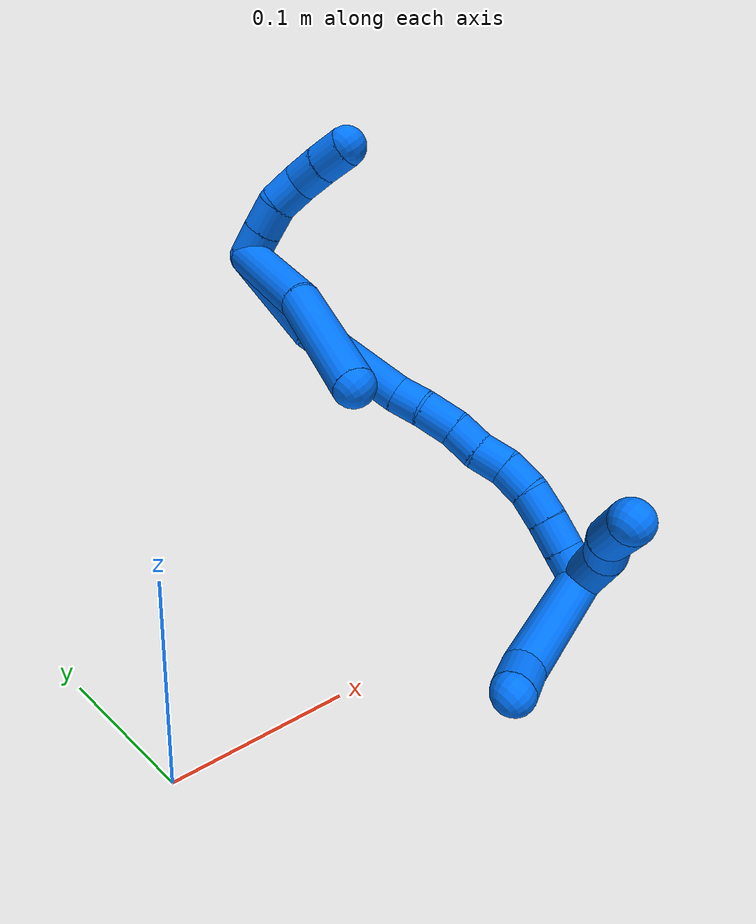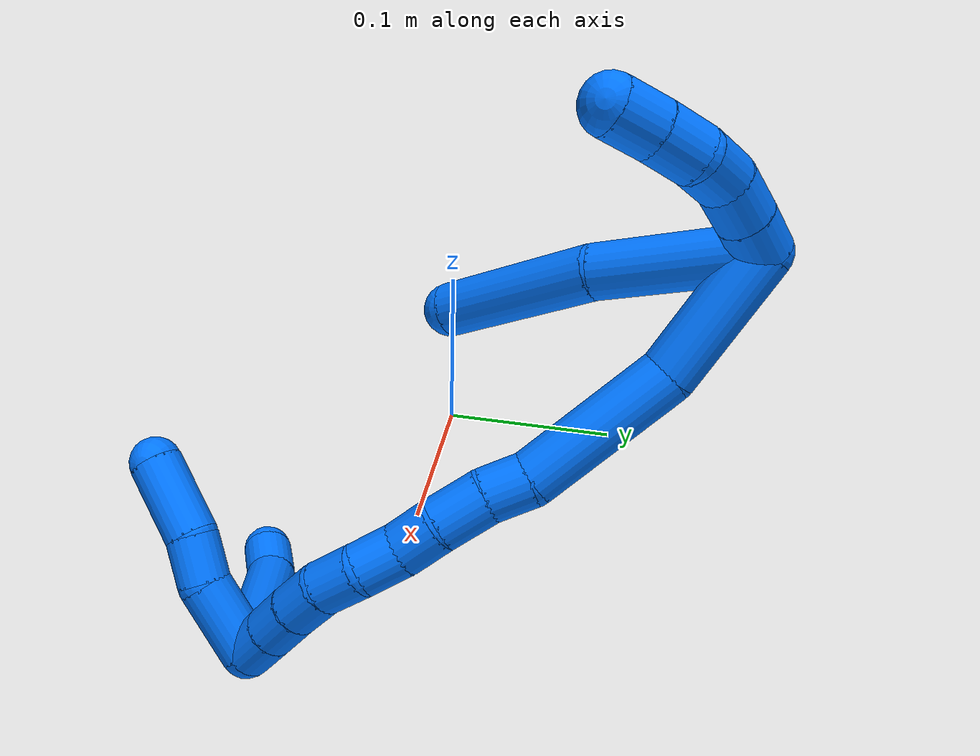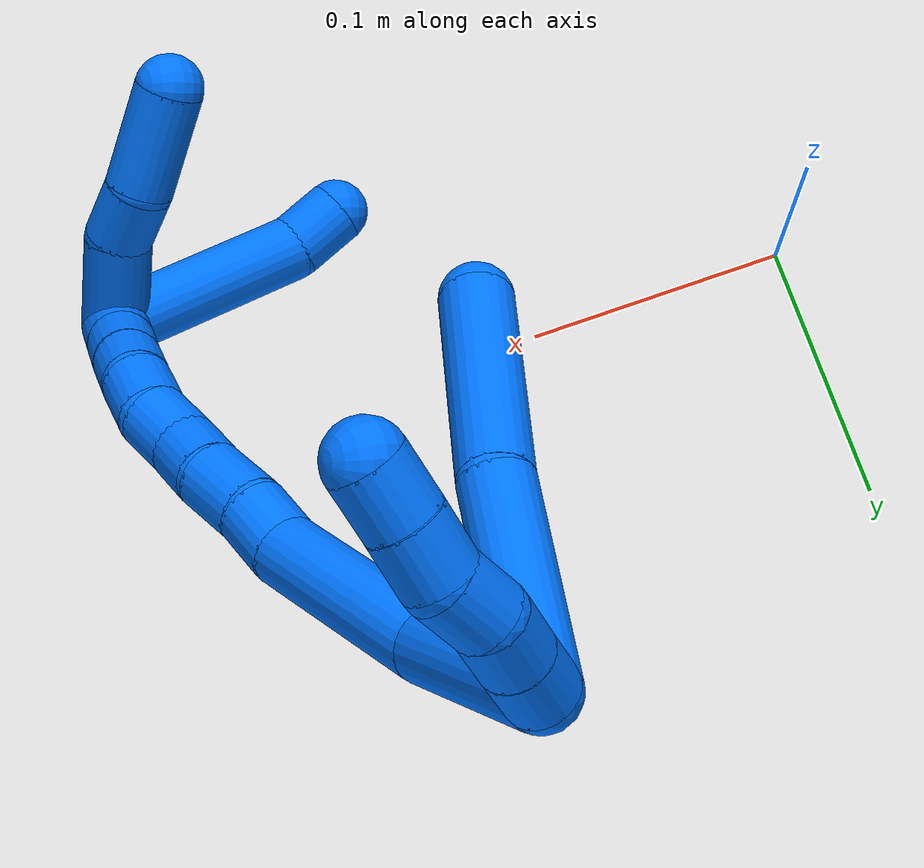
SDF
<sdf version="1.7">
 <world name="default">
  <model name="14">
   <static>0</static>
   <link name="14">
    <collision name="collision-cylinder-e_1_2_8">
     <pose>0.018135 -0.030482 -0.006465 1.77979 0.527081 0.642982</pose>
     <geometry><cylinder><radius>0.0125</radius><length>0.072106</length></cylinder></geometry>
     <surface>
      <friction><ode><mu>1.16</mu><mu2>1.16</mu2><slip1>0</slip1><slip2>0</slip2></ode></friction>
      <contact><ode><kp>1e+06</kp><kd>1</kd><max_vel>0</max_vel><min_depth>0.001</min_depth></ode></contact>
     </surface>
    </collision>
    <visual name="visual-cylinder-e_1_2_8">
     <pose>0.018135 -0.030482 -0.006465 1.77979 0.527081 0.642982</pose>
     <geometry><cylinder><radius>0.0125</radius><length>0.072106</length></cylinder></geometry>
     <material><ambient>0 0.462745 1 1</ambient></material>
    </visual>
    <collision name="collision-cylinder-e_2_8_6">
     <pose>0.058655 -0.090035 -0.025995 1.99316 0.612284 0.908942</pose>
     <geometry><cylinder><radius>0.0125</radius><length>0.077894</length></cylinder></geometry>
     <surface>
      <friction><ode><mu>1.16</mu><mu2>1.16</mu2><slip1>0</slip1><slip2>0</slip2></ode></friction>
      <contact><ode><kp>1e+06</kp><kd>1</kd><max_vel>0</max_vel><min_depth>0.001</min_depth></ode></contact>
     </surface>
    </collision>
    <visual name="visual-cylinder-e_2_8_6">
     <pose>0.058655 -0.090035 -0.025995 1.99316 0.612284 0.908942</pose>
     <geometry><cylinder><radius>0.0125</radius><length>0.077894</length></cylinder></geometry>
     <material><ambient>0 0.462745 1 1</ambient></material>
    </visual>
    <collision name="collision-cylinder-e_1_2_9">
     <pose>-0.004316 -0.005817 0.006895 0.700759 -0.446234 -0.165462</pose>
     <geometry><cylinder><radius>0.0125</radius><length>0.02</length></cylinder></geometry>
     <surface>
      <friction><ode><mu>1.16</mu><mu2>1.16</mu2><slip1>0</slip1><slip2>0</slip2></ode></friction>
      <contact><ode><kp>1e+06</kp><kd>1</kd><max_vel>0</max_vel><min_depth>0.001</min_depth></ode></contact>
     </surface>
    </collision>
    <visual name="visual-cylinder-e_1_2_9">
     <pose>-0.004316 -0.005817 0.006895 0.700759 -0.446234 -0.165462</pose>
     <geometry><cylinder><radius>0.0125</radius><length>0.02</length></cylinder></geometry>
     <material><ambient>0 0.462745 1 1</ambient></material>
    </visual>
    <collision name="collision-cylinder-e_2_9_10">
     <pose>-0.012761 -0.017705 0.020578 0.729803 -0.425692 -0.164745</pose>
     <geometry><cylinder><radius>0.0125</radius><length>0.02</length></cylinder></geometry>
     <surface>
      <friction><ode><mu>1.16</mu><mu2>1.16</mu2><slip1>0</slip1><slip2>0</slip2></ode></friction>
      <contact><ode><kp>1e+06</kp><kd>1</kd><max_vel>0</max_vel><min_depth>0.001</min_depth></ode></contact>
     </surface>
    </collision>
    <visual name="visual-cylinder-e_2_9_10">
     <pose>-0.012761 -0.017705 0.020578 0.729803 -0.425692 -0.164745</pose>
     <geometry><cylinder><radius>0.0125</radius><length>0.02</length></cylinder></geometry>
     <material><ambient>0 0.462745 1 1</ambient></material>
    </visual>
    <collision name="collision-cylinder-e_3_10_11">
     <pose>-0.018123 -0.029633 0.035378 0.631142 -0.123558 -0.040385</pose>
     <geometry><cylinder><radius>0.0125</radius><length>0.02</length></cylinder></geometry>
     <surface>
      <friction><ode><mu>1.16</mu><mu2>1.16</mu2><slip1>0</slip1><slip2>0</slip2></ode></friction>
      <contact><ode><kp>1e+06</kp><kd>1</kd><max_vel>0</max_vel><min_depth>0.001</min_depth></ode></contact>
     </surface>
    </collision>
    <visual name="visual-cylinder-e_3_10_11">
     <pose>-0.018123 -0.029633 0.035378 0.631142 -0.123558 -0.040385</pose>
     <geometry><cylinder><radius>0.0125</radius><length>0.02</length></cylinder></geometry>
     <material><ambient>0 0.462745 1 1</ambient></material>
    </visual>
    <collision name="collision-cylinder-e_4_11_12">
     <pose>-0.019989 -0.043726 0.049025 0.970785 -0.063395 -0.033448</pose>
     <geometry><cylinder><radius>0.0125</radius><length>0.02</length></cylinder></geometry>
     <surface>
      <friction><ode><mu>1.16</mu><mu2>1.16</mu2><slip1>0</slip1><slip2>0</slip2></ode></friction>
      <contact><ode><kp>1e+06</kp><kd>1</kd><max_vel>0</max_vel><min_depth>0.001</min_depth></ode></contact>
     </surface>
    </collision>
    <visual name="visual-cylinder-e_4_11_12">
     <pose>-0.019989 -0.043726 0.049025 0.970785 -0.063395 -0.033448</pose>
     <geometry><cylinder><radius>0.0125</radius><length>0.02</length></cylinder></geometry>
     <material><ambient>0 0.462745 1 1</ambient></material>
    </visual>
    <collision name="collision-cylinder-e_5_12_5">
     <pose>-0.020785 -0.060227 0.060287 0.97307 -0.016259 -0.0086</pose>
     <geometry><cylinder><radius>0.0125</radius><length>0.02</length></cylinder></geometry>
     <surface>
      <friction><ode><mu>1.16</mu><mu2>1.16</mu2><slip1>0</slip1><slip2>0</slip2></ode></friction>
      <contact><ode><kp>1e+06</kp><kd>1</kd><max_vel>0</max_vel><min_depth>0.001</min_depth></ode></contact>
     </surface>
    </collision>
    <visual name="visual-cylinder-e_5_12_5">
     <pose>-0.020785 -0.060227 0.060287 0.97307 -0.016259 -0.0086</pose>
     <geometry><cylinder><radius>0.0125</radius><length>0.02</length></cylinder></geometry>
     <material><ambient>0 0.462745 1 1</ambient></material>
    </visual>
    <collision name="collision-cylinder-e_1_2_13">
     <pose>0.030635 -0.005958 -8.1e-05 1.58441 1.37869 1.39207</pose>
     <geometry><cylinder><radius>0.0125</radius><length>0.062417</length></cylinder></geometry>
     <surface>
      <friction><ode><mu>1.16</mu><mu2>1.16</mu2><slip1>0</slip1><slip2>0</slip2></ode></friction>
      <contact><ode><kp>1e+06</kp><kd>1</kd><max_vel>0</max_vel><min_depth>0.001</min_depth></ode></contact>
     </surface>
    </collision>
    <visual name="visual-cylinder-e_1_2_13">
     <pose>0.030635 -0.005958 -8.1e-05 1.58441 1.37869 1.39207</pose>
     <geometry><cylinder><radius>0.0125</radius><length>0.062417</length></cylinder></geometry>
     <material><ambient>0 0.462745 1 1</ambient></material>
    </visual>
    <collision name="collision-cylinder-e_2_13_14">
     <pose>0.093126 -0.027101 0.006051 1.18243 1.0952 0.777123</pose>
     <geometry><cylinder><radius>0.0125</radius><length>0.071667</length></cylinder></geometry>
     <surface>
      <friction><ode><mu>1.16</mu><mu2>1.16</mu2><slip1>0</slip1><slip2>0</slip2></ode></friction>
      <contact><ode><kp>1e+06</kp><kd>1</kd><max_vel>0</max_vel><min_depth>0.001</min_depth></ode></contact>
     </surface>
    </collision>
    <visual name="visual-cylinder-e_2_13_14">
     <pose>0.093126 -0.027101 0.006051 1.18243 1.0952 0.777123</pose>
     <geometry><cylinder><radius>0.0125</radius><length>0.071667</length></cylinder></geometry>
     <material><ambient>0 0.462745 1 1</ambient></material>
    </visual>
    <collision name="collision-cylinder-e_3_14_15">
     <pose>0.132309 -0.048908 0.014052 1.30701 0.818361 0.64123</pose>
     <geometry><cylinder><radius>0.0125</radius><length>0.020074</length></cylinder></geometry>
     <surface>
      <friction><ode><mu>1.16</mu><mu2>1.16</mu2><slip1>0</slip1><slip2>0</slip2></ode></friction>
      <contact><ode><kp>1e+06</kp><kd>1</kd><max_vel>0</max_vel><min_depth>0.001</min_depth></ode></contact>
     </surface>
    </collision>
    <visual name="visual-cylinder-e_3_14_15">
     <pose>0.132309 -0.048908 0.014052 1.30701 0.818361 0.64123</pose>
     <geometry><cylinder><radius>0.0125</radius><length>0.020074</length></cylinder></geometry>
     <material><ambient>0 0.462745 1 1</ambient></material>
    </visual>
    <collision name="collision-cylinder-e_4_15_16">
     <pose>0.149691 -0.061809 0.018012 1.23783 0.986905 0.731679</pose>
     <geometry><cylinder><radius>0.0125</radius><length>0.024102</length></cylinder></geometry>
     <surface>
      <friction><ode><mu>1.16</mu><mu2>1.16</mu2><slip1>0</slip1><slip2>0</slip2></ode></friction>
      <contact><ode><kp>1e+06</kp><kd>1</kd><max_vel>0</max_vel><min_depth>0.001</min_depth></ode></contact>
     </surface>
    </collision>
    <visual name="visual-cylinder-e_4_15_16">
     <pose>0.149691 -0.061809 0.018012 1.23783 0.986905 0.731679</pose>
     <geometry><cylinder><radius>0.0125</radius><length>0.024102</length></cylinder></geometry>
     <material><ambient>0 0.462745 1 1</ambient></material>
    </visual>
    <collision name="collision-cylinder-e_5_16_17">
     <pose>0.168543 -0.07308 0.020177 1.57203 1.05459 1.05566</pose>
     <geometry><cylinder><radius>0.0125</radius><length>0.020232</length></cylinder></geometry>
     <surface>
      <friction><ode><mu>1.16</mu><mu2>1.16</mu2><slip1>0</slip1><slip2>0</slip2></ode></friction>
      <contact><ode><kp>1e+06</kp><kd>1</kd><max_vel>0</max_vel><min_depth>0.001</min_depth></ode></contact>
     </surface>
    </collision>
    <visual name="visual-cylinder-e_5_16_17">
     <pose>0.168543 -0.07308 0.020177 1.57203 1.05459 1.05566</pose>
     <geometry><cylinder><radius>0.0125</radius><length>0.020232</length></cylinder></geometry>
     <material><ambient>0 0.462745 1 1</ambient></material>
    </visual>
    <collision name="collision-cylinder-e_6_17_18">
     <pose>0.185398 -0.083993 0.021989 1.27289 0.915528 0.698355</pose>
     <geometry><cylinder><radius>0.0125</radius><length>0.020323</length></cylinder></geometry>
     <surface>
      <friction><ode><mu>1.16</mu><mu2>1.16</mu2><slip1>0</slip1><slip2>0</slip2></ode></friction>
      <contact><ode><kp>1e+06</kp><kd>1</kd><max_vel>0</max_vel><min_depth>0.001</min_depth></ode></contact>
     </surface>
    </collision>
    <visual name="visual-cylinder-e_6_17_18">
     <pose>0.185398 -0.083993 0.021989 1.27289 0.915528 0.698355</pose>
     <geometry><cylinder><radius>0.0125</radius><length>0.020323</length></cylinder></geometry>
     <material><ambient>0 0.462745 1 1</ambient></material>
    </visual>
    <collision name="collision-cylinder-e_7_18_19">
     <pose>0.201759 -0.096201 0.022649 1.7527 0.914632 1.06738</pose>
     <geometry><cylinder><radius>0.0125</radius><length>0.020962</length></cylinder></geometry>
     <surface>
      <friction><ode><mu>1.16</mu><mu2>1.16</mu2><slip1>0</slip1><slip2>0</slip2></ode></friction>
      <contact><ode><kp>1e+06</kp><kd>1</kd><max_vel>0</max_vel><min_depth>0.001</min_depth></ode></contact>
     </surface>
    </collision>
    <visual name="visual-cylinder-e_7_18_19">
     <pose>0.201759 -0.096201 0.022649 1.7527 0.914632 1.06738</pose>
     <geometry><cylinder><radius>0.0125</radius><length>0.020962</length></cylinder></geometry>
     <material><ambient>0 0.462745 1 1</ambient></material>
    </visual>
    <collision name="collision-cylinder-e_8_19_20">
     <pose>0.218795 -0.10682 0.018916 2.10753 1.04737 1.58622</pose>
     <geometry><cylinder><radius>0.0125</radius><length>0.020161</length></cylinder></geometry>
     <surface>
      <friction><ode><mu>1.16</mu><mu2>1.16</mu2><slip1>0</slip1><slip2>0</slip2></ode></friction>
      <contact><ode><kp>1e+06</kp><kd>1</kd><max_vel>0</max_vel><min_depth>0.001</min_depth></ode></contact>
     </surface>
    </collision>
    <visual name="visual-cylinder-e_8_19_20">
     <pose>0.218795 -0.10682 0.018916 2.10753 1.04737 1.58622</pose>
     <geometry><cylinder><radius>0.0125</radius><length>0.020161</length></cylinder></geometry>
     <material><ambient>0 0.462745 1 1</ambient></material>
    </visual>
    <collision name="collision-cylinder-e_9_20_21">
     <pose>0.236229 -0.115058 0.013316 2.22933 1.05449 1.7411</pose>
     <geometry><cylinder><radius>0.0125</radius><length>0.020017</length></cylinder></geometry>
     <surface>
      <friction><ode><mu>1.16</mu><mu2>1.16</mu2><slip1>0</slip1><slip2>0</slip2></ode></friction>
      <contact><ode><kp>1e+06</kp><kd>1</kd><max_vel>0</max_vel><min_depth>0.001</min_depth></ode></contact>
     </surface>
    </collision>
    <visual name="visual-cylinder-e_9_20_21">
     <pose>0.236229 -0.115058 0.013316 2.22933 1.05449 1.7411</pose>
     <geometry><cylinder><radius>0.0125</radius><length>0.020017</length></cylinder></geometry>
     <material><ambient>0 0.462745 1 1</ambient></material>
    </visual>
    <collision name="collision-cylinder-e_10_21_1">
     <pose>0.253625 -0.122958 0.007298 2.21432 1.04955 1.71687</pose>
     <geometry><cylinder><radius>0.0125</radius><length>0.020046</length></cylinder></geometry>
     <surface>
      <friction><ode><mu>1.16</mu><mu2>1.16</mu2><slip1>0</slip1><slip2>0</slip2></ode></friction>
      <contact><ode><kp>1e+06</kp><kd>1</kd><max_vel>0</max_vel><min_depth>0.001</min_depth></ode></contact>
     </surface>
    </collision>
    <visual name="visual-cylinder-e_10_21_1">
     <pose>0.253625 -0.122958 0.007298 2.21432 1.04955 1.71687</pose>
     <geometry><cylinder><radius>0.0125</radius><length>0.020046</length></cylinder></geometry>
     <material><ambient>0 0.462745 1 1</ambient></material>
    </visual>
    <collision name="collision-cylinder-e_1_1_22">
     <pose>0.25733 -0.140884 -0.031788 2.77318 -0.128197 -0.663527</pose>
     <geometry><cylinder><radius>0.0125</radius><length>0.078014</length></cylinder></geometry>
     <surface>
      <friction><ode><mu>1.16</mu><mu2>1.16</mu2><slip1>0</slip1><slip2>0</slip2></ode></friction>
      <contact><ode><kp>1e+06</kp><kd>1</kd><max_vel>0</max_vel><min_depth>0.001</min_depth></ode></contact>
     </surface>
    </collision>
    <visual name="visual-cylinder-e_1_1_22">
     <pose>0.25733 -0.140884 -0.031788 2.77318 -0.128197 -0.663527</pose>
     <geometry><cylinder><radius>0.0125</radius><length>0.078014</length></cylinder></geometry>
     <material><ambient>0 0.462745 1 1</ambient></material>
    </visual>
    <collision name="collision-cylinder-e_2_22_4">
     <pose>0.249644 -0.161461 -0.07621 2.46838 -0.248039 -0.684458</pose>
     <geometry><cylinder><radius>0.0125</radius><length>0.021986</length></cylinder></geometry>
     <surface>
      <friction><ode><mu>1.16</mu><mu2>1.16</mu2><slip1>0</slip1><slip2>0</slip2></ode></friction>
      <contact><ode><kp>1e+06</kp><kd>1</kd><max_vel>0</max_vel><min_depth>0.001</min_depth></ode></contact>
     </surface>
    </collision>
    <visual name="visual-cylinder-e_2_22_4">
     <pose>0.249644 -0.161461 -0.07621 2.46838 -0.248039 -0.684458</pose>
     <geometry><cylinder><radius>0.0125</radius><length>0.021986</length></cylinder></geometry>
     <material><ambient>0 0.462745 1 1</ambient></material>
    </visual>
    <collision name="collision-cylinder-e_1_1_23">
     <pose>0.251869 -0.142198 0.007507 1.36369 -0.590683 -0.484222</pose>
     <geometry><cylinder><radius>0.0125</radius><length>0.037518</length></cylinder></geometry>
     <surface>
      <friction><ode><mu>1.16</mu><mu2>1.16</mu2><slip1>0</slip1><slip2>0</slip2></ode></friction>
      <contact><ode><kp>1e+06</kp><kd>1</kd><max_vel>0</max_vel><min_depth>0.001</min_depth></ode></contact>
     </surface>
    </collision>
    <visual name="visual-cylinder-e_1_1_23">
     <pose>0.251869 -0.142198 0.007507 1.36369 -0.590683 -0.484222</pose>
     <geometry><cylinder><radius>0.0125</radius><length>0.037518</length></cylinder></geometry>
     <material><ambient>0 0.462745 1 1</ambient></material>
    </visual>
    <collision name="collision-cylinder-e_2_23_24">
     <pose>0.233108 -0.165331 0.009984 1.66265 -0.809718 -0.878425</pose>
     <geometry><cylinder><radius>0.0125</radius><length>0.022963</length></cylinder></geometry>
     <surface>
      <friction><ode><mu>1.16</mu><mu2>1.16</mu2><slip1>0</slip1><slip2>0</slip2></ode></friction>
      <contact><ode><kp>1e+06</kp><kd>1</kd><max_vel>0</max_vel><min_depth>0.001</min_depth></ode></contact>
     </surface>
    </collision>
    <visual name="visual-cylinder-e_2_23_24">
     <pose>0.233108 -0.165331 0.009984 1.66265 -0.809718 -0.878425</pose>
     <geometry><cylinder><radius>0.0125</radius><length>0.022963</length></cylinder></geometry>
     <material><ambient>0 0.462745 1 1</ambient></material>
    </visual>
    <collision name="collision-cylinder-e_3_24_3">
     <pose>0.214208 -0.189786 0.007303 1.68825 -0.565418 -0.631687</pose>
     <geometry><cylinder><radius>0.0125</radius><length>0.039519</length></cylinder></geometry>
     <surface>
      <friction><ode><mu>1.16</mu><mu2>1.16</mu2><slip1>0</slip1><slip2>0</slip2></ode></friction>
      <contact><ode><kp>1e+06</kp><kd>1</kd><max_vel>0</max_vel><min_depth>0.001</min_depth></ode></contact>
     </surface>
    </collision>
    <visual name="visual-cylinder-e_3_24_3">
     <pose>0.214208 -0.189786 0.007303 1.68825 -0.565418 -0.631687</pose>
     <geometry><cylinder><radius>0.0125</radius><length>0.039519</length></cylinder></geometry>
     <material><ambient>0 0.462745 1 1</ambient></material>
    </visual>
    <collision name="collision-sphere-3">
     <pose>0.203621 -0.206355 0.005348 0 -0 0</pose>
     <geometry><sphere><radius>0.0125</radius></sphere></geometry>
     <surface>
      <friction><ode><mu>1.16</mu><mu2>1.16</mu2><slip1>0</slip1><slip2>0</slip2></ode></friction>
      <contact><ode><kp>1e+06</kp><kd>1</kd><max_vel>0</max_vel><min_depth>0.001</min_depth></ode></contact>
     </surface>
    </collision>
    <visual name="visual-sphere-3">
     <pose>0.203621 -0.206355 0.005348 0 -0 0</pose>
     <geometry><sphere><radius>0.0125</radius></sphere></geometry>
     <material><ambient>0 0.462745 1 1</ambient></material>
    </visual>
    <collision name="collision-sphere-24">
     <pose>0.224795 -0.173217 0.009258 0 -0 0</pose>
     <geometry><sphere><radius>0.0125</radius></sphere></geometry>
     <surface>
      <friction><ode><mu>1.16</mu><mu2>1.16</mu2><slip1>0</slip1><slip2>0</slip2></ode></friction>
      <contact><ode><kp>1e+06</kp><kd>1</kd><max_vel>0</max_vel><min_depth>0.001</min_depth></ode></contact>
     </surface>
    </collision>
    <visual name="visual-sphere-24">
     <pose>0.224795 -0.173217 0.009258 0 -0 0</pose>
     <geometry><sphere><radius>0.0125</radius></sphere></geometry>
     <material><ambient>0 0.462745 1 1</ambient></material>
    </visual>
    <collision name="collision-sphere-23">
     <pose>0.241422 -0.157446 0.010711 0 -0 0</pose>
     <geometry><sphere><radius>0.0125</radius></sphere></geometry>
     <surface>
      <friction><ode><mu>1.16</mu><mu2>1.16</mu2><slip1>0</slip1><slip2>0</slip2></ode></friction>
      <contact><ode><kp>1e+06</kp><kd>1</kd><max_vel>0</max_vel><min_depth>0.001</min_depth></ode></contact>
     </surface>
    </collision>
    <visual name="visual-sphere-23">
     <pose>0.241422 -0.157446 0.010711 0 -0 0</pose>
     <geometry><sphere><radius>0.0125</radius></sphere></geometry>
     <material><ambient>0 0.462745 1 1</ambient></material>
    </visual>
    <collision name="collision-sphere-4">
     <pose>0.246945 -0.168105 -0.084542 0 -0 0</pose>
     <geometry><sphere><radius>0.0125</radius></sphere></geometry>
     <surface>
      <friction><ode><mu>1.16</mu><mu2>1.16</mu2><slip1>0</slip1><slip2>0</slip2></ode></friction>
      <contact><ode><kp>1e+06</kp><kd>1</kd><max_vel>0</max_vel><min_depth>0.001</min_depth></ode></contact>
     </surface>
    </collision>
    <visual name="visual-sphere-4">
     <pose>0.246945 -0.168105 -0.084542 0 -0 0</pose>
     <geometry><sphere><radius>0.0125</radius></sphere></geometry>
     <material><ambient>0 0.462745 1 1</ambient></material>
    </visual>
    <collision name="collision-sphere-22">
     <pose>0.252343 -0.154816 -0.067879 0 -0 0</pose>
     <geometry><sphere><radius>0.0125</radius></sphere></geometry>
     <surface>
      <friction><ode><mu>1.16</mu><mu2>1.16</mu2><slip1>0</slip1><slip2>0</slip2></ode></friction>
      <contact><ode><kp>1e+06</kp><kd>1</kd><max_vel>0</max_vel><min_depth>0.001</min_depth></ode></contact>
     </surface>
    </collision>
    <visual name="visual-sphere-22">
     <pose>0.252343 -0.154816 -0.067879 0 -0 0</pose>
     <geometry><sphere><radius>0.0125</radius></sphere></geometry>
     <material><ambient>0 0.462745 1 1</ambient></material>
    </visual>
    <collision name="collision-sphere-1">
     <pose>0.262317 -0.126951 0.004303 0 -0 0</pose>
     <geometry><sphere><radius>0.0125</radius></sphere></geometry>
     <surface>
      <friction><ode><mu>1.16</mu><mu2>1.16</mu2><slip1>0</slip1><slip2>0</slip2></ode></friction>
      <contact><ode><kp>1e+06</kp><kd>1</kd><max_vel>0</max_vel><min_depth>0.001</min_depth></ode></contact>
     </surface>
    </collision>
    <visual name="visual-sphere-1">
     <pose>0.262317 -0.126951 0.004303 0 -0 0</pose>
     <geometry><sphere><radius>0.0125</radius></sphere></geometry>
     <material><ambient>0 0.462745 1 1</ambient></material>
    </visual>
    <collision name="collision-sphere-21">
     <pose>0.244933 -0.118966 0.010292 0 -0 0</pose>
     <geometry><sphere><radius>0.0125</radius></sphere></geometry>
     <surface>
      <friction><ode><mu>1.16</mu><mu2>1.16</mu2><slip1>0</slip1><slip2>0</slip2></ode></friction>
      <contact><ode><kp>1e+06</kp><kd>1</kd><max_vel>0</max_vel><min_depth>0.001</min_depth></ode></contact>
     </surface>
    </collision>
    <visual name="visual-sphere-21">
     <pose>0.244933 -0.118966 0.010292 0 -0 0</pose>
     <geometry><sphere><radius>0.0125</radius></sphere></geometry>
     <material><ambient>0 0.462745 1 1</ambient></material>
    </visual>
    <collision name="collision-sphere-11">
     <pose>-0.019355 -0.035489 0.04339 0 -0 0</pose>
     <geometry><sphere><radius>0.0125</radius></sphere></geometry>
     <surface>
      <friction><ode><mu>1.16</mu><mu2>1.16</mu2><slip1>0</slip1><slip2>0</slip2></ode></friction>
      <contact><ode><kp>1e+06</kp><kd>1</kd><max_vel>0</max_vel><min_depth>0.001</min_depth></ode></contact>
     </surface>
    </collision>
    <visual name="visual-sphere-11">
     <pose>-0.019355 -0.035489 0.04339 0 -0 0</pose>
     <geometry><sphere><radius>0.0125</radius></sphere></geometry>
     <material><ambient>0 0.462745 1 1</ambient></material>
    </visual>
    <collision name="collision-sphere-10">
     <pose>-0.01689 -0.023778 0.027366 0 -0 0</pose>
     <geometry><sphere><radius>0.0125</radius></sphere></geometry>
     <surface>
      <friction><ode><mu>1.16</mu><mu2>1.16</mu2><slip1>0</slip1><slip2>0</slip2></ode></friction>
      <contact><ode><kp>1e+06</kp><kd>1</kd><max_vel>0</max_vel><min_depth>0.001</min_depth></ode></contact>
     </surface>
    </collision>
    <visual name="visual-sphere-10">
     <pose>-0.01689 -0.023778 0.027366 0 -0 0</pose>
     <geometry><sphere><radius>0.0125</radius></sphere></geometry>
     <material><ambient>0 0.462745 1 1</ambient></material>
    </visual>
    <collision name="collision-sphere-6">
     <pose>0.081039 -0.119106 -0.03906 0 -0 0</pose>
     <geometry><sphere><radius>0.0125</radius></sphere></geometry>
     <surface>
      <friction><ode><mu>1.16</mu><mu2>1.16</mu2><slip1>0</slip1><slip2>0</slip2></ode></friction>
      <contact><ode><kp>1e+06</kp><kd>1</kd><max_vel>0</max_vel><min_depth>0.001</min_depth></ode></contact>
     </surface>
    </collision>
    <visual name="visual-sphere-6">
     <pose>0.081039 -0.119106 -0.03906 0 -0 0</pose>
     <geometry><sphere><radius>0.0125</radius></sphere></geometry>
     <material><ambient>0 0.462745 1 1</ambient></material>
    </visual>
    <collision name="collision-sphere-9">
     <pose>-0.008631 -0.011633 0.01379 0 -0 0</pose>
     <geometry><sphere><radius>0.0125</radius></sphere></geometry>
     <surface>
      <friction><ode><mu>1.16</mu><mu2>1.16</mu2><slip1>0</slip1><slip2>0</slip2></ode></friction>
      <contact><ode><kp>1e+06</kp><kd>1</kd><max_vel>0</max_vel><min_depth>0.001</min_depth></ode></contact>
     </surface>
    </collision>
    <visual name="visual-sphere-9">
     <pose>-0.008631 -0.011633 0.01379 0 -0 0</pose>
     <geometry><sphere><radius>0.0125</radius></sphere></geometry>
     <material><ambient>0 0.462745 1 1</ambient></material>
    </visual>
    <collision name="collision-sphere-2">
     <geometry><sphere><radius>0.0125</radius></sphere></geometry>
     <surface>
      <friction><ode><mu>1.16</mu><mu2>1.16</mu2><slip1>0</slip1><slip2>0</slip2></ode></friction>
      <contact><ode><kp>1e+06</kp><kd>1</kd><max_vel>0</max_vel><min_depth>0.001</min_depth></ode></contact>
     </surface>
    </collision>
    <visual name="visual-sphere-2">
     <geometry><sphere><radius>0.0125</radius></sphere></geometry>
     <material><ambient>0 0.462745 1 1</ambient></material>
    </visual>
    <collision name="collision-sphere-19">
     <pose>0.210064 -0.10249 0.021493 0 -0 0</pose>
     <geometry><sphere><radius>0.0125</radius></sphere></geometry>
     <surface>
      <friction><ode><mu>1.16</mu><mu2>1.16</mu2><slip1>0</slip1><slip2>0</slip2></ode></friction>
      <contact><ode><kp>1e+06</kp><kd>1</kd><max_vel>0</max_vel><min_depth>0.001</min_depth></ode></contact>
     </surface>
    </collision>
    <visual name="visual-sphere-19">
     <pose>0.210064 -0.10249 0.021493 0 -0 0</pose>
     <geometry><sphere><radius>0.0125</radius></sphere></geometry>
     <material><ambient>0 0.462745 1 1</ambient></material>
    </visual>
    <collision name="collision-sphere-8">
     <pose>0.03627 -0.060964 -0.01293 0 -0 0</pose>
     <geometry><sphere><radius>0.0125</radius></sphere></geometry>
     <surface>
      <friction><ode><mu>1.16</mu><mu2>1.16</mu2><slip1>0</slip1><slip2>0</slip2></ode></friction>
      <contact><ode><kp>1e+06</kp><kd>1</kd><max_vel>0</max_vel><min_depth>0.001</min_depth></ode></contact>
     </surface>
    </collision>
    <visual name="visual-sphere-8">
     <pose>0.03627 -0.060964 -0.01293 0 -0 0</pose>
     <geometry><sphere><radius>0.0125</radius></sphere></geometry>
     <material><ambient>0 0.462745 1 1</ambient></material>
    </visual>
    <collision name="collision-sphere-12">
     <pose>-0.020622 -0.051962 0.05466 0 -0 0</pose>
     <geometry><sphere><radius>0.0125</radius></sphere></geometry>
     <surface>
      <friction><ode><mu>1.16</mu><mu2>1.16</mu2><slip1>0</slip1><slip2>0</slip2></ode></friction>
      <contact><ode><kp>1e+06</kp><kd>1</kd><max_vel>0</max_vel><min_depth>0.001</min_depth></ode></contact>
     </surface>
    </collision>
    <visual name="visual-sphere-12">
     <pose>-0.020622 -0.051962 0.05466 0 -0 0</pose>
     <geometry><sphere><radius>0.0125</radius></sphere></geometry>
     <material><ambient>0 0.462745 1 1</ambient></material>
    </visual>
    <collision name="collision-sphere-5">
     <pose>-0.020948 -0.068493 0.065914 0 -0 0</pose>
     <geometry><sphere><radius>0.0125</radius></sphere></geometry>
     <surface>
      <friction><ode><mu>1.16</mu><mu2>1.16</mu2><slip1>0</slip1><slip2>0</slip2></ode></friction>
      <contact><ode><kp>1e+06</kp><kd>1</kd><max_vel>0</max_vel><min_depth>0.001</min_depth></ode></contact>
     </surface>
    </collision>
    <visual name="visual-sphere-5">
     <pose>-0.020948 -0.068493 0.065914 0 -0 0</pose>
     <geometry><sphere><radius>0.0125</radius></sphere></geometry>
     <material><ambient>0 0.462745 1 1</ambient></material>
    </visual>
    <collision name="collision-sphere-13">
     <pose>0.061269 -0.011916 -0.000162 0 -0 0</pose>
     <geometry><sphere><radius>0.0125</radius></sphere></geometry>
     <surface>
      <friction><ode><mu>1.16</mu><mu2>1.16</mu2><slip1>0</slip1><slip2>0</slip2></ode></friction>
      <contact><ode><kp>1e+06</kp><kd>1</kd><max_vel>0</max_vel><min_depth>0.001</min_depth></ode></contact>
     </surface>
    </collision>
    <visual name="visual-sphere-13">
     <pose>0.061269 -0.011916 -0.000162 0 -0 0</pose>
     <geometry><sphere><radius>0.0125</radius></sphere></geometry>
     <material><ambient>0 0.462745 1 1</ambient></material>
    </visual>
    <collision name="collision-sphere-14">
     <pose>0.124982 -0.042286 0.012264 0 -0 0</pose>
     <geometry><sphere><radius>0.0125</radius></sphere></geometry>
     <surface>
      <friction><ode><mu>1.16</mu><mu2>1.16</mu2><slip1>0</slip1><slip2>0</slip2></ode></friction>
      <contact><ode><kp>1e+06</kp><kd>1</kd><max_vel>0</max_vel><min_depth>0.001</min_depth></ode></contact>
     </surface>
    </collision>
    <visual name="visual-sphere-14">
     <pose>0.124982 -0.042286 0.012264 0 -0 0</pose>
     <geometry><sphere><radius>0.0125</radius></sphere></geometry>
     <material><ambient>0 0.462745 1 1</ambient></material>
    </visual>
    <collision name="collision-sphere-15">
     <pose>0.139636 -0.05553 0.015841 0 -0 0</pose>
     <geometry><sphere><radius>0.0125</radius></sphere></geometry>
     <surface>
      <friction><ode><mu>1.16</mu><mu2>1.16</mu2><slip1>0</slip1><slip2>0</slip2></ode></friction>
      <contact><ode><kp>1e+06</kp><kd>1</kd><max_vel>0</max_vel><min_depth>0.001</min_depth></ode></contact>
     </surface>
    </collision>
    <visual name="visual-sphere-15">
     <pose>0.139636 -0.05553 0.015841 0 -0 0</pose>
     <geometry><sphere><radius>0.0125</radius></sphere></geometry>
     <material><ambient>0 0.462745 1 1</ambient></material>
    </visual>
    <collision name="collision-sphere-16">
     <pose>0.159745 -0.068087 0.020183 0 -0 0</pose>
     <geometry><sphere><radius>0.0125</radius></sphere></geometry>
     <surface>
      <friction><ode><mu>1.16</mu><mu2>1.16</mu2><slip1>0</slip1><slip2>0</slip2></ode></friction>
      <contact><ode><kp>1e+06</kp><kd>1</kd><max_vel>0</max_vel><min_depth>0.001</min_depth></ode></contact>
     </surface>
    </collision>
    <visual name="visual-sphere-16">
     <pose>0.159745 -0.068087 0.020183 0 -0 0</pose>
     <geometry><sphere><radius>0.0125</radius></sphere></geometry>
     <material><ambient>0 0.462745 1 1</ambient></material>
    </visual>
    <collision name="collision-sphere-17">
     <pose>0.177341 -0.078073 0.020171 0 -0 0</pose>
     <geometry><sphere><radius>0.0125</radius></sphere></geometry>
     <surface>
      <friction><ode><mu>1.16</mu><mu2>1.16</mu2><slip1>0</slip1><slip2>0</slip2></ode></friction>
      <contact><ode><kp>1e+06</kp><kd>1</kd><max_vel>0</max_vel><min_depth>0.001</min_depth></ode></contact>
     </surface>
    </collision>
    <visual name="visual-sphere-17">
     <pose>0.177341 -0.078073 0.020171 0 -0 0</pose>
     <geometry><sphere><radius>0.0125</radius></sphere></geometry>
     <material><ambient>0 0.462745 1 1</ambient></material>
    </visual>
    <collision name="collision-sphere-18">
     <pose>0.193455 -0.089912 0.023806 0 -0 0</pose>
     <geometry><sphere><radius>0.0125</radius></sphere></geometry>
     <surface>
      <friction><ode><mu>1.16</mu><mu2>1.16</mu2><slip1>0</slip1><slip2>0</slip2></ode></friction>
      <contact><ode><kp>1e+06</kp><kd>1</kd><max_vel>0</max_vel><min_depth>0.001</min_depth></ode></contact>
     </surface>
    </collision>
    <visual name="visual-sphere-18">
     <pose>0.193455 -0.089912 0.023806 0 -0 0</pose>
     <geometry><sphere><radius>0.0125</radius></sphere></geometry>
     <material><ambient>0 0.462745 1 1</ambient></material>
    </visual>
    <collision name="collision-sphere-20">
     <pose>0.227526 -0.11115 0.01634 0 -0 0</pose>
     <geometry><sphere><radius>0.0125</radius></sphere></geometry>
     <surface>
      <friction><ode><mu>1.16</mu><mu2>1.16</mu2><slip1>0</slip1><slip2>0</slip2></ode></friction>
      <contact><ode><kp>1e+06</kp><kd>1</kd><max_vel>0</max_vel><min_depth>0.001</min_depth></ode></contact>
     </surface>
    </collision>
    <visual name="visual-sphere-20">
     <pose>0.227526 -0.11115 0.01634 0 -0 0</pose>
     <geometry><sphere><radius>0.0125</radius></sphere></geometry>
     <material><ambient>0 0.462745 1 1</ambient></material>
    </visual>
    <inertial>
     <pose>0.124893 -0.08058 0.001154 0 -0 0</pose>
     <mass>0.75</mass>
     <inertia><ixx>0.000162</ixx><ixy>0</ixy><ixz>0</ixz><iyy>4.7e-05</iyy><iyz>0</iyz><izz>2.6e-05</izz></inertia>
    </inertial>
   </link>
   <pose>0.160242 0.158559 0.220807 -0.413826 0.97083 -0.623318</pose>
  </model>
 </world>
</sdf>
